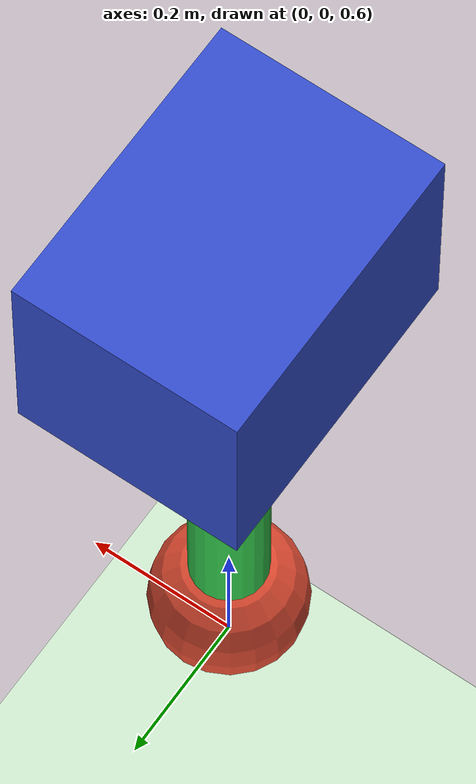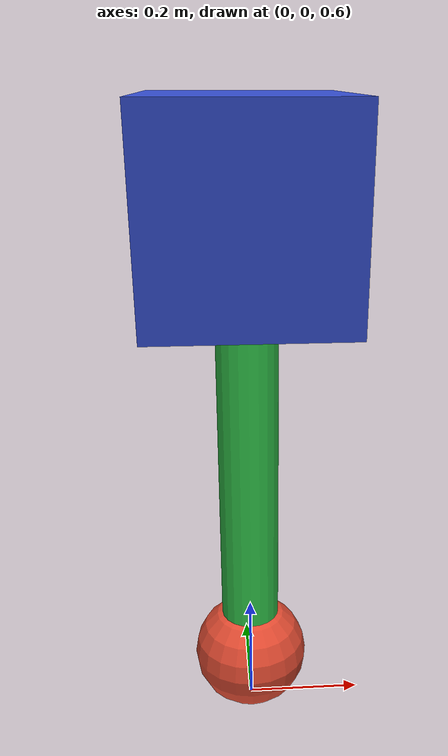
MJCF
<mujoco model="body_hierarchy">
    <compiler angle="degree"/>
    <option gravity="0 0 -9.81" timestep="0.002" integrator="RK4"/>

    <worldbody>
        <light pos="0 -2 4" dir="0 1 -1" directional="true"/>
        <geom name="ground" type="plane" size="3 3 0.1" rgba="0.8 0.9 0.8 1"/>

        <!-- No joint: base is welded to world. -->
        <body name="base" pos="0 0 1.5">
            <geom name="base_geom" type="box" size="0.15 0.2 0.15" rgba="0.2 0.3 0.8 1"/>

            <!-- Its pose is expressed in the base frame. -->
            <body name="arm_link" pos="0 0 0">
                <joint name="shoulder" type="hinge" axis="0 1 0" damping="0.05"/>
                <geom name="arm_geom" type="capsule" fromto="0 0 0 0 0 -0.8" size="0.05" rgba="0.2 0.8 0.3 1"/>

                <!-- No joint: tool is welded to arm_link but keeps its own frame. -->
                <body name="tool" pos="0 0 -0.8">
                    <geom name="tool_geom" type="sphere" size="0.1" rgba="0.9 0.3 0.2 1"/>
                    <site name="tool_center" type="sphere" size="0.02" rgba="1 1 0 1"/>
                </body>
            </body>
        </body>
    </worldbody>
</mujoco>
